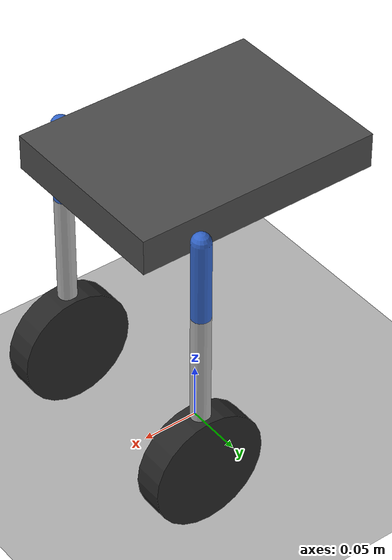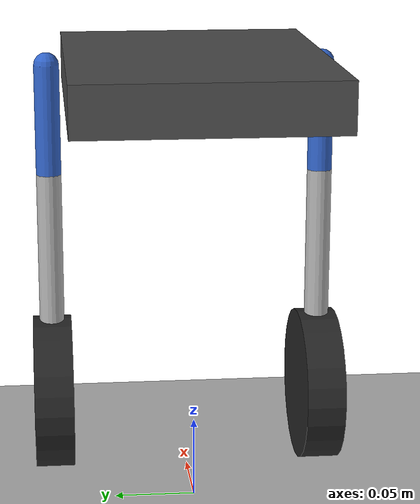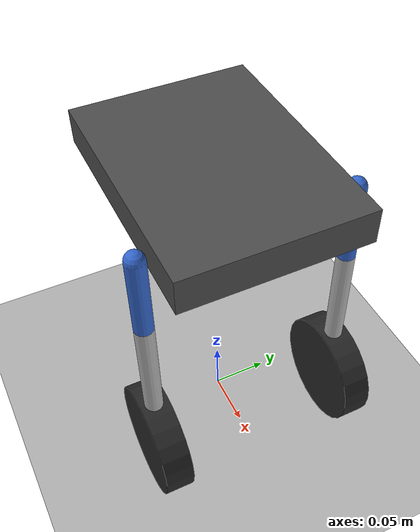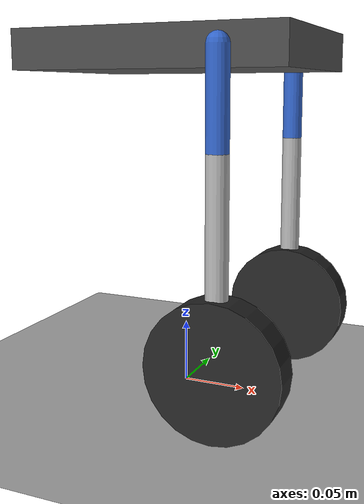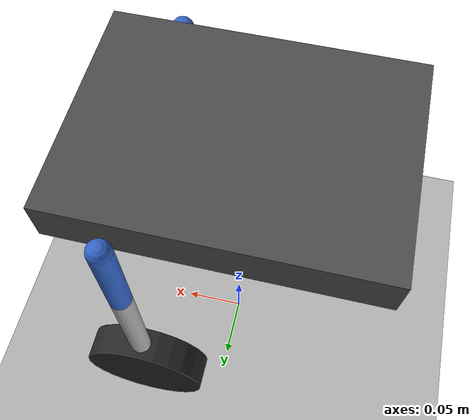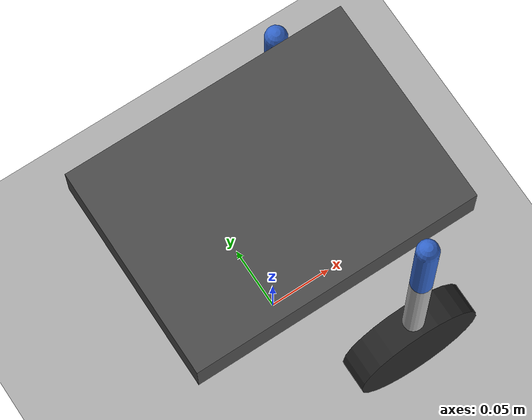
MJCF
<mujoco model="wlr_robot">
  <!-- WLR Robot — Open-chain model with PD balance controller -->
  <compiler angle="radian" autolimits="true"/>
  <option timestep="0.001" gravity="0 0 -9.81" solver="Newton" iterations="100"/>
  <default>
    <joint damping="0.02" armature="0.001"/>
    <geom contype="1" conaffinity="1" condim="4" friction="1.5 0.005 0.001"/>
  </default>
  <asset>
    <texture type="2d" name="grid" builtin="checker" width="512" height="512"
             rgb1="0.8 0.8 0.8" rgb2="0.6 0.6 0.6"/>
    <material name="grid" texture="grid" texrepeat="5 5" reflectance="0.1"/>
  </asset>
  <worldbody>
    <geom name="floor" type="plane" size="10 10 0.1" material="grid" friction="1.5 0.005 0.001"/>
    <body name="base" pos="0 0 0.267">
      <freejoint/>
      <inertial mass="0.5" pos="0 0 0" diaginertia="0.001 0.002 0.003"/>
      <geom type="box" size="0.105 0.0775 0.015" rgba="0.3 0.3 0.3 1"/>
      <site name="imu" pos="0 0 0"/>
      <!-- LEFT LEG -->
      <body name="L_hip" pos="0.0615 0.0875 0">
        <joint name="L_hip_j" type="hinge" axis="0 1 0" range="-1.5 1.5" damping="0.05"/>
        <inertial mass="0.04" pos="0 0 -0.035" diaginertia="1e-5 1e-5 1e-6"/>
        <geom type="capsule" fromto="0 0 0 0 0 -0.07" size="0.008" rgba="0.2 0.4 0.8 1"/>
        <body name="L_knee" pos="0 0 -0.07">
          <joint name="L_knee_j" type="hinge" axis="0 1 0" range="-3.14 3.14" damping="0.05"/>
          <inertial mass="0.072" pos="0 0 -0.0735" diaginertia="1.3e-4 1.3e-4 2.3e-6"/>
          <geom type="capsule" fromto="0 0 0 0 0 -0.147" size="0.008" rgba="0.7 0.7 0.7 1"/>
          <body name="L_wheel" pos="0 0 -0.147">
            <joint name="L_wheel_j" type="hinge" axis="0 1 0" damping="0.01"/>
            <inertial mass="0.34" pos="0 0 0" diaginertia="2.3e-4 4.25e-4 2.3e-4"/>
            <geom type="cylinder" fromto="0 -0.0125 0 0 0.0125 0" size="0.05"
                  rgba="0.15 0.15 0.15 1" friction="1.5 0.005 0.001"/>
          </body>
        </body>
      </body>
      <!-- RIGHT LEG -->
      <body name="R_hip" pos="0.0615 -0.0875 0">
        <joint name="R_hip_j" type="hinge" axis="0 1 0" range="-1.5 1.5" damping="0.05"/>
        <inertial mass="0.04" pos="0 0 -0.035" diaginertia="1e-5 1e-5 1e-6"/>
        <geom type="capsule" fromto="0 0 0 0 0 -0.07" size="0.008" rgba="0.2 0.4 0.8 1"/>
        <body name="R_knee" pos="0 0 -0.07">
          <joint name="R_knee_j" type="hinge" axis="0 1 0" range="-3.14 3.14" damping="0.05"/>
          <inertial mass="0.072" pos="0 0 -0.0735" diaginertia="1.3e-4 1.3e-4 2.3e-6"/>
          <geom type="capsule" fromto="0 0 0 0 0 -0.147" size="0.008" rgba="0.7 0.7 0.7 1"/>
          <body name="R_wheel" pos="0 0 -0.147">
            <joint name="R_wheel_j" type="hinge" axis="0 1 0" damping="0.01"/>
            <inertial mass="0.34" pos="0 0 0" diaginertia="2.3e-4 4.25e-4 2.3e-4"/>
            <geom type="cylinder" fromto="0 -0.0125 0 0 0.0125 0" size="0.05"
                  rgba="0.15 0.15 0.15 1" friction="1.5 0.005 0.001"/>
          </body>
        </body>
      </body>
    </body>
  </worldbody>
  <actuator>
    <motor name="L_hip_m"   joint="L_hip_j"   gear="1" ctrlrange="-10 10" ctrllimited="true"/>
    <motor name="L_knee_m"  joint="L_knee_j"  gear="1" ctrlrange="-50 50" ctrllimited="true"/>
    <motor name="L_wheel_m" joint="L_wheel_j"  gear="1" ctrlrange="-10 10" ctrllimited="true"/>
    <motor name="R_hip_m"   joint="R_hip_j"   gear="1" ctrlrange="-10 10" ctrllimited="true"/>
    <motor name="R_knee_m"  joint="R_knee_j"  gear="1" ctrlrange="-50 50" ctrllimited="true"/>
    <motor name="R_wheel_m" joint="R_wheel_j"  gear="1" ctrlrange="-10 10" ctrllimited="true"/>
  </actuator>
  <sensor>
    <framequat name="quat" objtype="site" objname="imu"/>
    <gyro name="gyro" site="imu"/>
  </sensor>
</mujoco>
